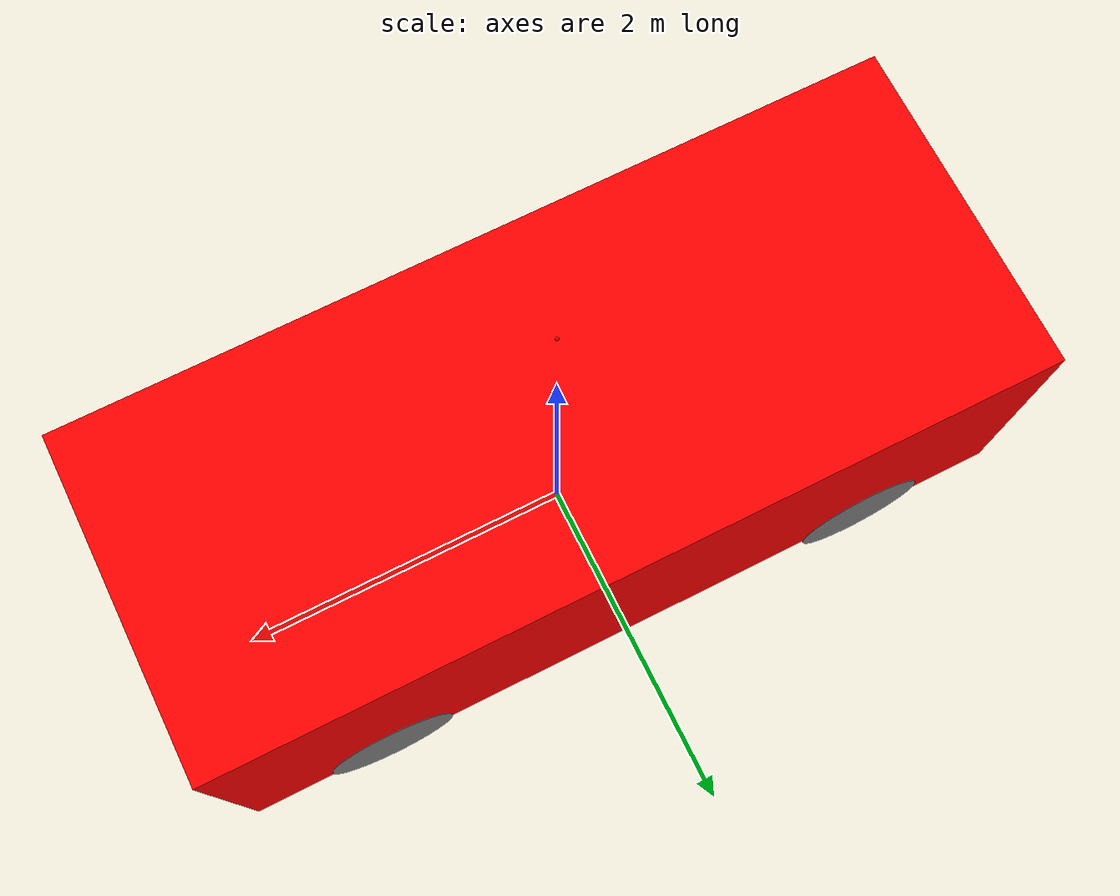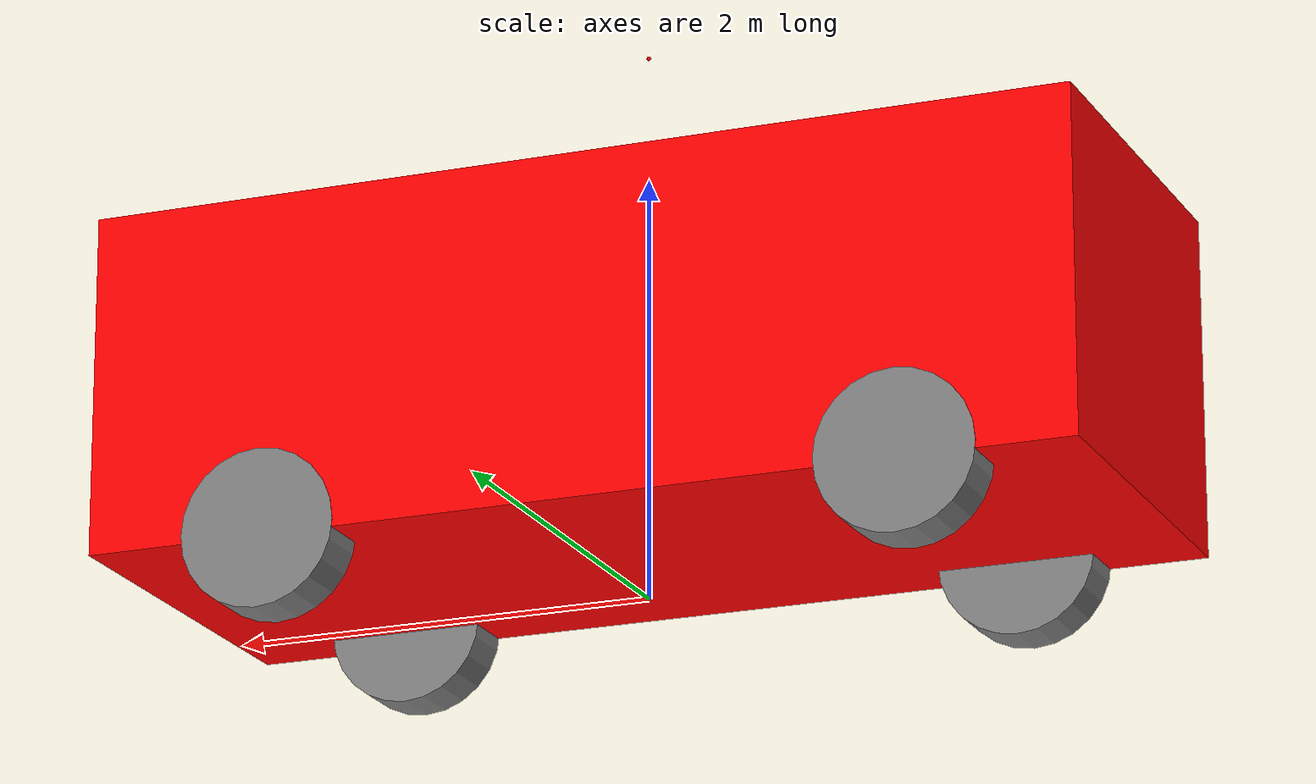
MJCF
<mujoco model="ioniq5_vehicle">
  <compiler inertiafromgeom="true"/>
  <option timestep="0.002" gravity="0 0 -9.81"/>

  <asset>
    <texture name="grid" type="2d" builtin="checker"
             rgb1="0.2 0.3 0.4" rgb2="0.8 0.8 0.8" width="512" height="512"/>
    <material name="grid_mat" texture="grid" texrepeat="5 5"
              specular="0.3" shininess="0.3"/>
    <texture name="wheel_pattern" type="cube" builtin="checker"
             rgb1="1 1 1" rgb2="0 0 0" width="64" height="64"/>
    <material name="wheel_mat" texture="wheel_pattern" texrepeat="10 2" texuniform="true"
              specular="0.4" shininess="0.3" reflectance="0.05"/>
  </asset>

  <!-- 차체-서스펜션 충돌 무시 -->
  <contact>
    <exclude body1="fl_susp" body2="chassis"/>
    <exclude body1="fr_susp" body2="chassis"/>
    <exclude body1="rl_susp" body2="chassis"/>
    <exclude body1="rr_susp" body2="chassis"/>
  </contact>

  <worldbody>
    <!-- 차체 중심 높이: 약 1.0025 m -->
    <body name="chassis" pos="0 0 1.0025">
      <inertial pos="0.45 0 -0.65" mass="1782" diaginertia="750 3500 3800"/>
      <joint name="root" type="free" damping="8"/>

      <!-- 차체 실제 크기 -->
      <geom name="chassis_geom" type="box"
            size="2.3275 0.945 0.8025"
            rgba="1 0 0 1"
            contype="0" conaffinity="0"/>

      <site name="lidar_high" pos="0 0 1.60" euler="0 0 0" size="0.01" rgba="1 0 0 1"/>
      <site name="lidar_low"  pos="2.10 0 0.55" euler="0 0 0" size="0.01" rgba="0 0 1 1"/>

      <!-- 앞왼쪽 -->
      <body name="fl_susp" pos=" 1.50  0.82  0.00">
        <inertial pos="0 0 0" mass="25" diaginertia="0.3 0.3 0.3"/>
        <joint name="fl_suspension" type="slide" axis="0 0 1"
               range="-0.10 0.10" damping="2000" stiffness="55000" springref="0.0"/>
        <!-- 휠 중심 -0.765 -->
        <body name="front_left_wheel" pos="0 0 -0.765">
          <joint name="steer_fl" type="hinge" axis="0 0 -1" range="-0.6 0.6" damping="5"/>
          <joint name="fl_wheel" type="hinge" axis="0 1 0" damping="3.0"/>
          <geom name="fl_geom" type="cylinder" size="0.37 0.1275"
                euler="90 0 0" material="wheel_mat"
                mass="35"
                contype="1" conaffinity="1"
                friction="1.3 0.5 0.04"
                solref="0.005 1" solimp="0.9 0.95 0.001"/>
        </body>
      </body>

      <!-- 앞오른쪽 -->
      <body name="fr_susp" pos=" 1.50 -0.82  0.00">
        <inertial pos="0 0 0" mass="25" diaginertia="0.3 0.3 0.3"/>
        <joint name="fr_suspension" type="slide" axis="0 0 1"
               range="-0.10 0.10" damping="2000" stiffness="55000" springref="0.0"/>
        <body name="front_right_wheel" pos="0 0 -0.765">
          <joint name="steer_fr" type="hinge" axis="0 0 -1" range="-0.6 0.6" damping="5"/>
          <joint name="fr_wheel" type="hinge" axis="0 1 0" damping="3.0"/>
          <geom name="fr_geom" type="cylinder" size="0.37 0.1275"
                euler="90 0 0" material="wheel_mat"
                mass="35"
                contype="1" conaffinity="1"
                friction="1.3 0.5 0.04"
                solref="0.005 1" solimp="0.9 0.95 0.001"/>
        </body>
      </body>

      <!-- 뒤왼쪽 -->
      <body name="rl_susp" pos="-1.50  0.82  0.00">
        <inertial pos="0 0 0" mass="25" diaginertia="0.3 0.3 0.3"/>
        <joint name="rl_suspension" type="slide" axis="0 0 1"
               range="-0.10 0.10" damping="2600" stiffness="52000" springref="0.0"/>
        <body name="rear_left_wheel" pos="0 0 -0.765">
          <joint name="rl_wheel" type="hinge" axis="0 1 0" damping="3.0"/>
          <geom name="rl_geom" type="cylinder" size="0.37 0.1275"
                euler="90 0 0" material="wheel_mat"
                mass="35"
                contype="1" conaffinity="1"
                friction="1.3 0.5 0.04"
                solref="0.005 1" solimp="0.9 0.95 0.001"/>
        </body>
      </body>

      <!-- 뒤오른쪽 -->
      <body name="rr_susp" pos="-1.50 -0.82  0.00">
        <inertial pos="0 0 0" mass="25" diaginertia="0.3 0.3 0.3"/>
        <joint name="rr_suspension" type="slide" axis="0 0 1"
               range="-0.10 0.10" damping="2600" stiffness="52000" springref="0.0"/>
        <body name="rear_right_wheel" pos="0 0 -0.765">
          <joint name="rr_wheel" type="hinge" axis="0 1 0" damping="3.0"/>
          <geom name="rr_geom" type="cylinder" size="0.37 0.1275"
                euler="90 0 0" material="wheel_mat"
                mass="35"
                contype="1" conaffinity="1"
                friction="1.3 0.5 0.04"
                solref="0.005 1" solimp="0.9 0.95 0.001"/>
        </body>
      </body>
    </body>

    <!-- (기타 worldbody 안의 요소가 더 있다면 여기 계속) -->

  </worldbody>

  <actuator>
    <motor name="fl_motor" joint="fl_wheel" ctrlrange="-10000 10000" gear="5.0"/>
    <motor name="fr_motor" joint="fr_wheel" ctrlrange="-10000 10000" gear="5.0"/>
    <motor name="rl_motor" joint="rl_wheel" ctrlrange="-10000 10000" gear="5.0"/>
    <motor name="rr_motor" joint="rr_wheel" ctrlrange="-10000 10000" gear="5.0"/>

    <motor name="fl_act" joint="fl_suspension" gear="1.0" ctrlrange="-12000 12000"/>
    <motor name="fr_act" joint="fr_suspension" gear="1.0" ctrlrange="-12000 12000"/>
    <motor name="rl_act" joint="rl_suspension" gear="1.0" ctrlrange="-12000 12000"/>
    <motor name="rr_act" joint="rr_suspension" gear="1.0" ctrlrange="-12000 12000"/>

    <position name="steer_fl_pos" joint="steer_fl" kp="4000" ctrlrange="-0.6 0.6"/>
    <position name="steer_fr_pos" joint="steer_fr" kp="4000" ctrlrange="-0.6 0.6"/>
  </actuator>
</mujoco>
